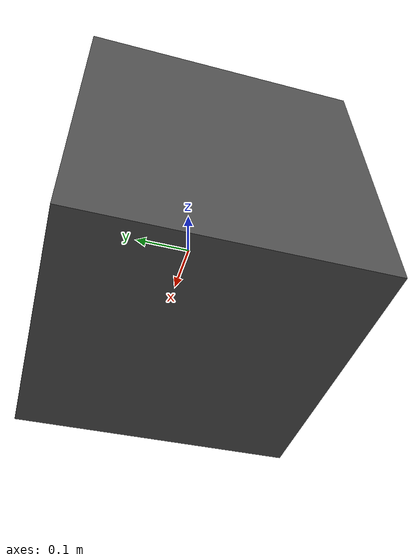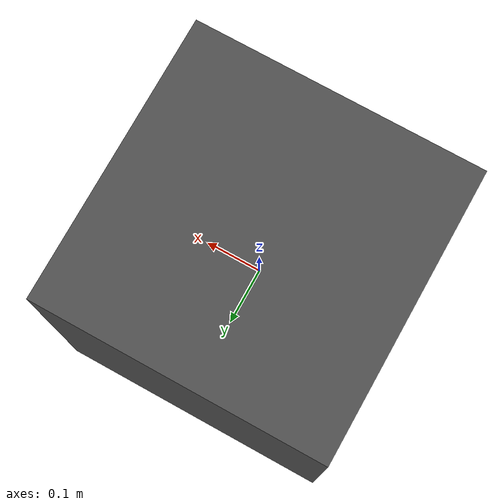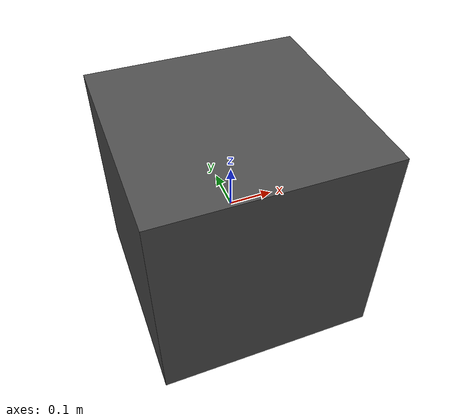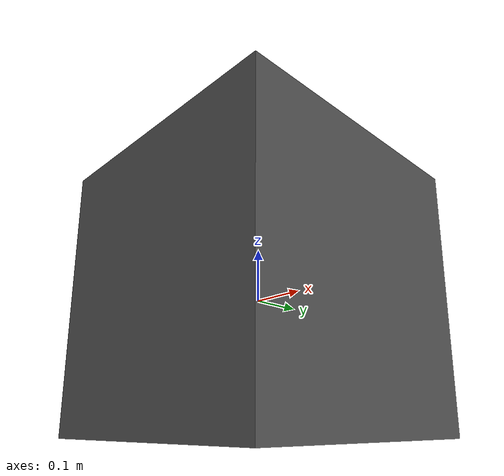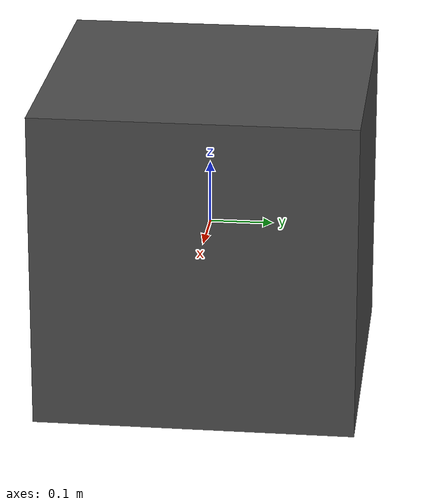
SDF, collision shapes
<?xml version="1.0" encoding="UTF-8"?>
<sdf version='1.9'>
  <model name='omnicopter'>
    <self_collide>false</self_collide>
    <static>false</static>
    <link name='base_link'>
      <enable_wind>true</enable_wind>
      <pose>0 0 0 0 -0 0</pose>
      <inertial>
        <pose>0 0 0 0 -0 0</pose>
        <mass>1.5</mass>
        <inertia>
          <ixx>0.085225</ixx>
          <ixy>0</ixy>
          <ixz>0</ixz>
          <iyy>0.085225</iyy>
          <iyz>0</iyz>
          <izz>0.085225</izz>
        </inertia>
      </inertial>
      <collision name='base_link_inertia_collision'>
        <pose>0 0 0 0 -0 0</pose>
        <geometry>
          <box>
            <size>0.5 0.5 0.5</size>
          </box>
        </geometry>
        <surface>
          <contact>
            <ode>
              <min_depth>0.001</min_depth>
              <max_vel>0</max_vel>
            </ode>
          </contact>
          <friction>
            <ode />
          </friction>
        </surface>
      </collision>
      <visual name='base_link_inertia_visual'>
        <pose>-0.23 -0.32 -0.45 0 -0 0</pose>
        <geometry>
          <mesh>
            <scale>0.001 0.001 0.001</scale>
            <uri>model://omnicopter/meshes/omnicopter.stl</uri>
          </mesh>
        </geometry>
        <material>
          <script>
            <name>Gazebo/DarkGrey</name>
            <uri>file://media/materials/scripts/gazebo.material</uri>
          </script>
        </material>
      </visual>
      <gravity>true</gravity>
      <velocity_decay />
      <sensor name="air_pressure_sensor" type="air_pressure">
        <gz_frame_id>base_link</gz_frame_id>
        <always_on>1</always_on>
        <update_rate>50</update_rate>
        <air_pressure>
          <pressure>
            <noise type="gaussian">
              <mean>0</mean>
              <stddev>0.01</stddev>
            </noise>
          </pressure>
        </air_pressure>
      </sensor>
      <sensor name="imu_sensor" type="imu">
        <gz_frame_id>base_link</gz_frame_id>
        <always_on>1</always_on>
        <update_rate>250</update_rate>
        <imu>
          <angular_velocity>
            <x>
              <noise type="gaussian">
                <mean>0</mean>
                <stddev>0.00018665</stddev>
                <dynamic_bias_stddev>3.8785e-05</dynamic_bias_stddev>
                <dynamic_bias_correlation_time>1000</dynamic_bias_correlation_time>
              </noise>
            </x>
            <y>
              <noise type="gaussian">
                <mean>0</mean>
                <stddev>0.00018665</stddev>
                <dynamic_bias_stddev>3.8785e-05</dynamic_bias_stddev>
                <dynamic_bias_correlation_time>1000</dynamic_bias_correlation_time>
              </noise>
            </y>
            <z>
              <noise type="gaussian">
                <mean>0</mean>
                <stddev>0.00018665</stddev>
                <dynamic_bias_stddev>3.8785e-05</dynamic_bias_stddev>
                <dynamic_bias_correlation_time>1000</dynamic_bias_correlation_time>
              </noise>
            </z>
          </angular_velocity>
          <linear_acceleration>
            <x>
              <noise type="gaussian">
                <mean>0</mean>
                <stddev>0.00186</stddev>
                <dynamic_bias_stddev>0.006</dynamic_bias_stddev>
                <dynamic_bias_correlation_time>300</dynamic_bias_correlation_time>
              </noise>
            </x>
            <y>
              <noise type="gaussian">
                <mean>0</mean>
                <stddev>0.00186</stddev>
                <dynamic_bias_stddev>0.006</dynamic_bias_stddev>
                <dynamic_bias_correlation_time>300</dynamic_bias_correlation_time>
              </noise>
            </y>
            <z>
              <noise type="gaussian">
                <mean>0</mean>
                <stddev>0.00186</stddev>
                <dynamic_bias_stddev>0.006</dynamic_bias_stddev>
                <dynamic_bias_correlation_time>300</dynamic_bias_correlation_time>
              </noise>
            </z>
          </linear_acceleration>
        </imu>
      </sensor>
      <sensor name="magnetometer_sensor" type="magnetometer">
        <gz_frame_id>base_link</gz_frame_id>
        <always_on>1</always_on>
        <update_rate>100</update_rate>
        <magnetometer>
          <!-- 3mgauss RMS = 3e-7 tesla, noise modeled after IIS2MDC -->
          <!-- Noise is in the units of the field: tesla with use_units_gauss=false (PX4 gz_bridge server.config),
               gauss with the gz-sim default -->
          <x>
            <noise type="gaussian">
              <stddev>3e-7</stddev>
            </noise>
          </x>
          <y>
            <noise type="gaussian">
              <stddev>3e-7</stddev>
            </noise>
          </y>
          <z>
            <noise type="gaussian">
              <stddev>3e-7</stddev>
            </noise>
          </z>
        </magnetometer>
      </sensor>
      <sensor name="navsat_sensor" type="navsat">
        <gz_frame_id>base_link</gz_frame_id>
        <always_on>1</always_on>
        <update_rate>30</update_rate>
      </sensor>
    </link>
    <link name='rotor_0'>
      <pose>0.1 0.1 0.1 -0.350879 -0.908651 0.172719</pose>
      <inertial>
        <pose>0 0 0 0 -0 0</pose>
        <mass>0.005</mass>
        <inertia>
          <ixx>9.75e-07</ixx>
          <ixy>0</ixy>
          <ixz>0</ixz>
          <iyy>0.000273104</iyy>
          <iyz>0</iyz>
          <izz>0.000274004</izz>
        </inertia>
      </inertial>
      <collision name='rotor_0_collision'>
        <pose>0 0 0 0 -0 0</pose>
        <geometry>
          <cylinder>
            <length>0.005</length>
            <radius>0.064</radius>
          </cylinder>
        </geometry>
        <surface>
          <contact>
            <ode />
          </contact>
          <friction>
            <ode />
          </friction>
        </surface>
      </collision>
      <visual name='rotor_0_visual'>
        <pose>0 0 0 0 -0 0</pose>
        <geometry>
          <mesh>
            <scale>0.5 0.5 0.5</scale>
            <uri>model://omnicopter/meshes/iris_prop_ccw.dae</uri>
          </mesh>
        </geometry>
        <material>
          <script>
            <name>Gazebo/Blue</name>
            <uri>file://media/materials/scripts/gazebo.material</uri>
          </script>
        </material>
      </visual>
      <gravity>1</gravity>
      <velocity_decay />
    </link>
    <joint name='rotor_0_joint' type='revolute'>
      <child>rotor_0</child>
      <parent>base_link</parent>
      <axis>
        <xyz expressed_in="__model__">-0.788675 0.211325 0.57735</xyz>
        <limit>
          <lower>-1e+16</lower>
          <upper>1e+16</upper>
        </limit>
        <dynamics>
          <spring_reference>0</spring_reference>
          <spring_stiffness>0</spring_stiffness>
        </dynamics>

      </axis>
    </joint>
    <link name='rotor_1'>
      <pose>-0.1 0.1 0.1 -2.20271 0.21293 -0.415283</pose>
      <inertial>
        <pose>0 0 0 0 -0 0</pose>
        <mass>0.005</mass>
        <inertia>
          <ixx>9.75e-07</ixx>
          <ixy>0</ixy>
          <ixz>0</ixz>
          <iyy>0.000273104</iyy>
          <iyz>0</iyz>
          <izz>0.000274004</izz>
        </inertia>
      </inertial>
      <collision name='rotor_1_collision'>
        <pose>0 0 0 0 -0 0</pose>
        <geometry>
          <cylinder>
            <length>0.005</length>
            <radius>0.064</radius>
          </cylinder>
        </geometry>
        <surface>
          <contact>
            <ode />
          </contact>
          <friction>
            <ode />
          </friction>
        </surface>
      </collision>
      <visual name='rotor_1_visual'>
        <pose>0 0 0 0 -0 0</pose>
        <geometry>
          <mesh>
            <scale>0.5 0.5 0.5</scale>
            <uri>model://omnicopter/meshes/iris_prop_ccw.dae</uri>
          </mesh>
        </geometry>
        <material>
          <script>
            <name>Gazebo/DarkGrey</name>
            <uri>file://media/materials/scripts/gazebo.material</uri>
          </script>
        </material>
      </visual>
      <gravity>1</gravity>
      <velocity_decay />
    </link>
    <joint name='rotor_1_joint' type='revolute'>
      <child>rotor_1</child>
      <parent>base_link</parent>
      <axis>
        <xyz expressed_in="__model__">0.211325 0.788675 -0.57735</xyz>
        <limit>
          <lower>-1e+16</lower>
          <upper>1e+16</upper>
        </limit>
        <dynamics>
          <spring_reference>0</spring_reference>
          <spring_stiffness>0</spring_stiffness>
        </dynamics>
      </axis>
    </joint>
    <link name='rotor_2'>
      <pose>0.1 -0.1 0.1 2.20271 -0.21293 -0.415283</pose>
      <inertial>
        <pose>0 0 0 0 -0 0</pose>
        <mass>0.005</mass>
        <inertia>
          <ixx>9.75e-07</ixx>
          <ixy>0</ixy>
          <ixz>0</ixz>
          <iyy>0.000273104</iyy>
          <iyz>0</iyz>
          <izz>0.000274004</izz>
        </inertia>
      </inertial>
      <collision name='rotor_2_collision'>
        <pose>0 0 0 0 -0 0</pose>
        <geometry>
          <cylinder>
            <length>0.005</length>
            <radius>0.064</radius>
          </cylinder>
        </geometry>
        <surface>
          <contact>
            <ode />
          </contact>
          <friction>
            <ode />
          </friction>
        </surface>
      </collision>
      <visual name='rotor_2_visual'>
        <pose>0 0 0 0 -0 0</pose>
        <geometry>
          <mesh>
            <scale>0.5 0.5 0.5</scale>
            <uri>model://omnicopter/meshes/iris_prop_cw.dae</uri>
          </mesh>
        </geometry>
        <material>
          <script>
            <name>Gazebo/Blue</name>
            <uri>file://media/materials/scripts/gazebo.material</uri>
          </script>
        </material>
      </visual>
      <gravity>1</gravity>
      <velocity_decay />
    </link>
    <joint name='rotor_2_joint' type='revolute'>
      <child>rotor_2</child>
      <parent>base_link</parent>
      <axis>
        <xyz expressed_in="__model__">-0.211325 -0.788675 -0.57735</xyz>
        <limit>
          <lower>-1e+16</lower>
          <upper>1e+16</upper>
        </limit>
        <dynamics>
          <spring_reference>0</spring_reference>
          <spring_stiffness>0</spring_stiffness>
        </dynamics>

      </axis>
    </joint>
    <link name='rotor_3'>
      <pose>-0.1 -0.1 0.1 0.350879 0.908651 0.172719</pose>
      <inertial>
        <pose>0 0 0 0 -0 0</pose>
        <mass>0.005</mass>
        <inertia>
          <ixx>9.75e-07</ixx>
          <ixy>0</ixy>
          <ixz>0</ixz>
          <iyy>0.000273104</iyy>
          <iyz>0</iyz>
          <izz>0.000274004</izz>
        </inertia>
      </inertial>
      <collision name='rotor_3_collision'>
        <pose>0 0 0 0 -0 0</pose>
        <geometry>
          <cylinder>
            <length>0.005</length>
            <radius>0.064</radius>
          </cylinder>
        </geometry>
        <surface>
          <contact>
            <ode />
          </contact>
          <friction>
            <ode />
          </friction>
        </surface>
      </collision>
      <visual name='rotor_3_visual'>
        <pose>0 0 0 0 -0 0</pose>
        <geometry>
          <mesh>
            <scale>0.5 0.5 0.5</scale>
            <uri>model://omnicopter/meshes/iris_prop_cw.dae</uri>
          </mesh>
        </geometry>
        <material>
          <script>
            <name>Gazebo/DarkGrey</name>
            <uri>file://media/materials/scripts/gazebo.material</uri>
          </script>
        </material>
      </visual>
      <gravity>1</gravity>
      <velocity_decay />
    </link>
    <joint name='rotor_3_joint' type='revolute'>
      <child>rotor_3</child>
      <parent>base_link</parent>
      <axis>
        <xyz expressed_in="__model__">0.788675 -0.211325 0.57735</xyz>
        <limit>
          <lower>-1e+16</lower>
          <upper>1e+16</upper>
        </limit>
        <dynamics>
          <spring_reference>0</spring_reference>
          <spring_stiffness>0</spring_stiffness>
        </dynamics>

      </axis>
    </joint>
    <link name='rotor_4'>
      <pose>0.1 0.1 -0.1 0.350879 0.908651 0.172719</pose>
      <inertial>
        <pose>0 0 0 0 -0 0</pose>
        <mass>0.005</mass>
        <inertia>
          <ixx>9.75e-07</ixx>
          <ixy>0</ixy>
          <ixz>0</ixz>
          <iyy>0.000273104</iyy>
          <iyz>0</iyz>
          <izz>0.000274004</izz>
        </inertia>
      </inertial>
      <collision name='rotor_4_collision'>
        <pose>0 0 0 0 -0 0</pose>
        <geometry>
          <cylinder>
            <length>0.005</length>
            <radius>0.064</radius>
          </cylinder>
        </geometry>
        <surface>
          <contact>
            <ode />
          </contact>
          <friction>
            <ode />
          </friction>
        </surface>
      </collision>
      <visual name='rotor_4_visual'>
        <pose>0 0 0 0 -0 0</pose>
        <geometry>
          <mesh>
            <scale>0.5 0.5 0.5</scale>
            <uri>model://omnicopter/meshes/iris_prop_cw.dae</uri>
          </mesh>
        </geometry>
        <material>
          <script>
            <name>Gazebo/DarkGrey</name>
            <uri>file://media/materials/scripts/gazebo.material</uri>
          </script>
        </material>
      </visual>
      <gravity>1</gravity>
      <velocity_decay />
    </link>
    <joint name='rotor_4_joint' type='revolute'>
      <child>rotor_4</child>
      <parent>base_link</parent>
      <axis>
        <xyz expressed_in="__model__">0.788675 -0.211325 0.57735</xyz>
        <limit>
          <lower>-1e+16</lower>
          <upper>1e+16</upper>
        </limit>
        <dynamics>
          <spring_reference>0</spring_reference>
          <spring_stiffness>0</spring_stiffness>
        </dynamics>

      </axis>
    </joint>
    <link name='rotor_5'>
      <pose>-0.1 0.1 -0.1 2.20271 -0.21293 -0.415283</pose>
      <inertial>
        <pose>0 0 0 0 -0 0</pose>
        <mass>0.005</mass>
        <inertia>
          <ixx>9.75e-07</ixx>
          <ixy>0</ixy>
          <ixz>0</ixz>
          <iyy>0.000273104</iyy>
          <iyz>0</iyz>
          <izz>0.000274004</izz>
        </inertia>
      </inertial>
      <collision name='rotor_5_collision'>
        <pose>0 0 0 0 -0 0</pose>
        <geometry>
          <cylinder>
            <length>0.005</length>
            <radius>0.064</radius>
          </cylinder>
        </geometry>
        <surface>
          <contact>
            <ode />
          </contact>
          <friction>
            <ode />
          </friction>
        </surface>
      </collision>
      <visual name='rotor_5_visual'>
        <pose>0 0 0 0 -0 0</pose>
        <geometry>
          <mesh>
            <scale>0.5 0.5 0.5</scale>
            <uri>model://omnicopter/meshes/iris_prop_cw.dae</uri>
          </mesh>
        </geometry>
        <material>
          <script>
            <name>Gazebo/DarkGrey</name>
            <uri>file://media/materials/scripts/gazebo.material</uri>
          </script>
        </material>
      </visual>
      <gravity>1</gravity>
      <velocity_decay />
    </link>
    <joint name='rotor_5_joint' type='revolute'>
      <child>rotor_5</child>
      <parent>base_link</parent>
      <axis>
        <xyz expressed_in="__model__">-0.211325 -0.788675 -0.57735</xyz>
        <limit>
          <lower>-1e+16</lower>
          <upper>1e+16</upper>
        </limit>
        <dynamics>
          <spring_reference>0</spring_reference>
          <spring_stiffness>0</spring_stiffness>
        </dynamics>

      </axis>
    </joint>
    <link name='rotor_6'>
      <pose>0.1 -0.1 -0.1 -2.20271 0.21293 -0.415283</pose>
      <inertial>
        <pose>0 0 0 0 -0 0</pose>
        <mass>0.005</mass>
        <inertia>
          <ixx>9.75e-07</ixx>
          <ixy>0</ixy>
          <ixz>0</ixz>
          <iyy>0.000273104</iyy>
          <iyz>0</iyz>
          <izz>0.000274004</izz>
        </inertia>
      </inertial>
      <collision name='rotor_6_collision'>
        <pose>0 0 0 0 -0 0</pose>
        <geometry>
          <cylinder>
            <length>0.005</length>
            <radius>0.064</radius>
          </cylinder>
        </geometry>
        <surface>
          <contact>
            <ode />
          </contact>
          <friction>
            <ode />
          </friction>
        </surface>
      </collision>
      <visual name='rotor_6_visual'>
        <pose>0 0 0 0 -0 0</pose>
        <geometry>
          <mesh>
            <scale>0.5 0.5 0.5</scale>
            <uri>model://omnicopter/meshes/iris_prop_cw.dae</uri>
          </mesh>
        </geometry>
        <material>
          <script>
            <name>Gazebo/DarkGrey</name>
            <uri>file://media/materials/scripts/gazebo.material</uri>
          </script>
        </material>
      </visual>
      <gravity>1</gravity>
      <velocity_decay />
    </link>
    <joint name='rotor_6_joint' type='revolute'>
      <child>rotor_6</child>
      <parent>base_link</parent>
      <axis>
        <xyz expressed_in="__model__">0.211325 0.788675 -0.57735</xyz>
        <limit>
          <lower>-1e+16</lower>
          <upper>1e+16</upper>
        </limit>
        <dynamics>
          <spring_reference>0</spring_reference>
          <spring_stiffness>0</spring_stiffness>
        </dynamics>
      </axis>
    </joint>
    <link name='rotor_7'>
      <pose>-0.1 -0.1 -0.1 -0.350879 -0.908651 0.172719</pose>
      <inertial>
        <pose>0 0 0 0 -0 0</pose>
        <mass>0.005</mass>
        <inertia>
          <ixx>9.75e-07</ixx>
          <ixy>0</ixy>
          <ixz>0</ixz>
          <iyy>0.000273104</iyy>
          <iyz>0</iyz>
          <izz>0.000274004</izz>
        </inertia>
      </inertial>
      <collision name='rotor_7_collision'>
        <pose>0 0 0 0 -0 0</pose>
        <geometry>
          <cylinder>
            <length>0.005</length>
            <radius>0.064</radius>
          </cylinder>
        </geometry>
        <surface>
          <contact>
            <ode />
          </contact>
          <friction>
            <ode />
          </friction>
        </surface>
      </collision>
      <visual name='rotor_7_visual'>
        <pose>0 0 0 0 -0 0</pose>
        <geometry>
          <mesh>
            <scale>0.5 0.5 0.5</scale>
            <uri>model://omnicopter/meshes/iris_prop_cw.dae</uri>
          </mesh>
        </geometry>
        <material>
          <script>
            <name>Gazebo/DarkGrey</name>
            <uri>file://media/materials/scripts/gazebo.material</uri>
          </script>
        </material>
      </visual>
      <gravity>1</gravity>
      <velocity_decay />
    </link>
    <joint name='rotor_7_joint' type='revolute'>
      <child>rotor_7</child>
      <parent>base_link</parent>
      <axis>
        <xyz expressed_in="__model__">-0.788675 0.211325 0.57735</xyz>
        <limit>
          <lower>-1e+16</lower>
          <upper>1e+16</upper>
        </limit>
        <dynamics>
          <spring_reference>0</spring_reference>
          <spring_stiffness>0</spring_stiffness>
        </dynamics>
      </axis>
    </joint>

    <plugin filename="gz-sim-multicopter-motor-model-system"
      name="gz::sim::systems::MulticopterMotorModel">
      <jointName>rotor_0_joint</jointName>
      <linkName>rotor_0</linkName>
      <turningDirection>ccw</turningDirection>
      <timeConstantUp>0.0125</timeConstantUp>
      <timeConstantDown>0.025</timeConstantDown>
      <maxRotVelocity>1100.0</maxRotVelocity>
      <motorConstant>2.50972e-05</motorConstant>
      <momentConstant>0.06</momentConstant>
      <commandSubTopic>command/motor_speed</commandSubTopic>
      <motorNumber>0</motorNumber>
      <rotorDragCoefficient>0.000175</rotorDragCoefficient>
      <rollingMomentCoefficient>1e-06</rollingMomentCoefficient>
      <rotorVelocitySlowdownSim>10</rotorVelocitySlowdownSim>
      <motorType>velocity</motorType>
    </plugin>
    <plugin filename="gz-sim-multicopter-motor-model-system"
      name="gz::sim::systems::MulticopterMotorModel">
      <jointName>rotor_1_joint</jointName>
      <linkName>rotor_1</linkName>
      <turningDirection>ccw</turningDirection>
      <timeConstantUp>0.0125</timeConstantUp>
      <timeConstantDown>0.025</timeConstantDown>
      <maxRotVelocity>1100.0</maxRotVelocity>
      <motorConstant>2.50972e-05</motorConstant>
      <momentConstant>0.06</momentConstant>
      <commandSubTopic>command/motor_speed</commandSubTopic>
      <motorNumber>1</motorNumber>
      <rotorDragCoefficient>0.000175</rotorDragCoefficient>
      <rollingMomentCoefficient>1e-06</rollingMomentCoefficient>
      <rotorVelocitySlowdownSim>10</rotorVelocitySlowdownSim>
      <motorType>velocity</motorType>
    </plugin>
    <plugin filename="gz-sim-multicopter-motor-model-system"
      name="gz::sim::systems::MulticopterMotorModel">
      <jointName>rotor_2_joint</jointName>
      <linkName>rotor_2</linkName>
      <turningDirection>ccw</turningDirection>
      <timeConstantUp>0.0125</timeConstantUp>
      <timeConstantDown>0.025</timeConstantDown>
      <maxRotVelocity>1100.0</maxRotVelocity>
      <motorConstant>2.50972e-05</motorConstant>
      <momentConstant>0.06</momentConstant>
      <commandSubTopic>command/motor_speed</commandSubTopic>
      <motorNumber>2</motorNumber>
      <rotorDragCoefficient>0.000175</rotorDragCoefficient>
      <rollingMomentCoefficient>1e-06</rollingMomentCoefficient>
      <rotorVelocitySlowdownSim>10</rotorVelocitySlowdownSim>
      <motorType>velocity</motorType>
    </plugin>
    <plugin filename="gz-sim-multicopter-motor-model-system"
      name="gz::sim::systems::MulticopterMotorModel">
      <jointName>rotor_3_joint</jointName>
      <linkName>rotor_3</linkName>
      <turningDirection>ccw</turningDirection>
      <timeConstantUp>0.0125</timeConstantUp>
      <timeConstantDown>0.025</timeConstantDown>
      <maxRotVelocity>1100.0</maxRotVelocity>
      <motorConstant>2.50972e-05</motorConstant>
      <momentConstant>0.06</momentConstant>
      <commandSubTopic>command/motor_speed</commandSubTopic>
      <motorNumber>3</motorNumber>
      <rotorDragCoefficient>0.000175</rotorDragCoefficient>
      <rollingMomentCoefficient>1e-06</rollingMomentCoefficient>
      <rotorVelocitySlowdownSim>10</rotorVelocitySlowdownSim>
      <motorType>velocity</motorType>
    </plugin>
    <plugin filename="gz-sim-multicopter-motor-model-system"
      name="gz::sim::systems::MulticopterMotorModel">
      <jointName>rotor_4_joint</jointName>
      <linkName>rotor_4</linkName>
      <turningDirection>ccw</turningDirection>
      <timeConstantUp>0.0125</timeConstantUp>
      <timeConstantDown>0.025</timeConstantDown>
      <maxRotVelocity>1100.0</maxRotVelocity>
      <motorConstant>2.50972e-05</motorConstant>
      <momentConstant>0.06</momentConstant>
      <commandSubTopic>command/motor_speed</commandSubTopic>
      <motorNumber>4</motorNumber>
      <rotorDragCoefficient>0.000175</rotorDragCoefficient>
      <rollingMomentCoefficient>1e-06</rollingMomentCoefficient>
      <rotorVelocitySlowdownSim>10</rotorVelocitySlowdownSim>
      <motorType>velocity</motorType>
    </plugin>
    <plugin filename="gz-sim-multicopter-motor-model-system"
      name="gz::sim::systems::MulticopterMotorModel">
      <jointName>rotor_5_joint</jointName>
      <linkName>rotor_5</linkName>
      <turningDirection>ccw</turningDirection>
      <timeConstantUp>0.0125</timeConstantUp>
      <timeConstantDown>0.025</timeConstantDown>
      <maxRotVelocity>1100.0</maxRotVelocity>
      <motorConstant>2.50972e-05</motorConstant>
      <momentConstant>0.06</momentConstant>
      <commandSubTopic>command/motor_speed</commandSubTopic>
      <motorNumber>5</motorNumber>
      <rotorDragCoefficient>0.000175</rotorDragCoefficient>
      <rollingMomentCoefficient>1e-06</rollingMomentCoefficient>
      <rotorVelocitySlowdownSim>10</rotorVelocitySlowdownSim>
      <motorType>velocity</motorType>
    </plugin>
    <plugin filename="gz-sim-multicopter-motor-model-system"
      name="gz::sim::systems::MulticopterMotorModel">
      <jointName>rotor_6_joint</jointName>
      <linkName>rotor_6</linkName>
      <turningDirection>ccw</turningDirection>
      <timeConstantUp>0.0125</timeConstantUp>
      <timeConstantDown>0.025</timeConstantDown>
      <maxRotVelocity>1100.0</maxRotVelocity>
      <motorConstant>2.50972e-05</motorConstant>
      <momentConstant>0.06</momentConstant>
      <commandSubTopic>command/motor_speed</commandSubTopic>
      <motorNumber>6</motorNumber>
      <rotorDragCoefficient>0.000175</rotorDragCoefficient>
      <rollingMomentCoefficient>1e-06</rollingMomentCoefficient>
      <rotorVelocitySlowdownSim>10</rotorVelocitySlowdownSim>
      <motorType>velocity</motorType>
    </plugin>
    <plugin filename="gz-sim-multicopter-motor-model-system"
      name="gz::sim::systems::MulticopterMotorModel">
      <jointName>rotor_7_joint</jointName>
      <linkName>rotor_7</linkName>
      <turningDirection>ccw</turningDirection>
      <timeConstantUp>0.0125</timeConstantUp>
      <timeConstantDown>0.025</timeConstantDown>
      <maxRotVelocity>1100.0</maxRotVelocity>
      <motorConstant>2.50972e-05</motorConstant>
      <momentConstant>0.06</momentConstant>
      <commandSubTopic>command/motor_speed</commandSubTopic>
      <motorNumber>7</motorNumber>
      <rotorDragCoefficient>0.000175</rotorDragCoefficient>
      <rollingMomentCoefficient>1e-06</rollingMomentCoefficient>
      <rotorVelocitySlowdownSim>10</rotorVelocitySlowdownSim>
      <motorType>velocity</motorType>
    </plugin>
  </model>
</sdf>
